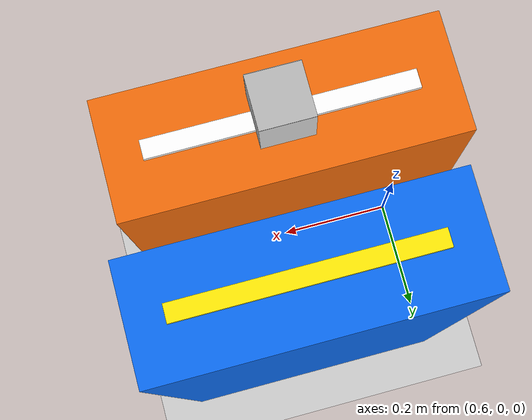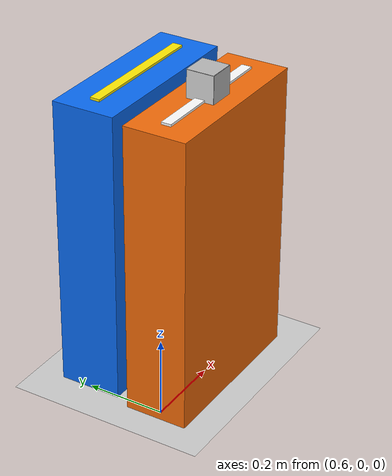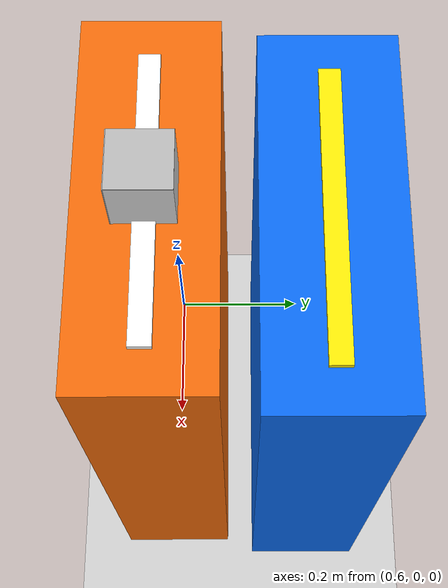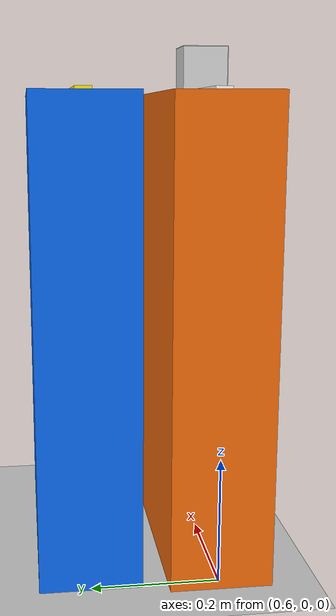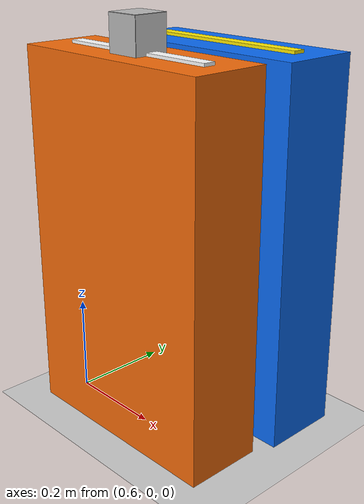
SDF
<?xml version="1.0"?>
<!-- 固定双工位抓放验证场景：禁止运行中移动动态样件或台面。 -->
<sdf version="1.6">
  <world name="grasp_place">
    <!-- 高对比度展示：避免 Gazebo Classic 默认光照令机器人和工位发灰。 -->
    <scene>
      <ambient>0.55 0.55 0.55 1</ambient>
      <background>0.08 0.11 0.16 1</background>
      <shadows>true</shadows>
    </scene>
    <light name="key_light" type="directional">
      <pose>0 0 8 0.35 -0.45 0</pose>
      <cast_shadows>true</cast_shadows>
      <diffuse>1 0.96 0.88 1</diffuse>
      <specular>0.25 0.25 0.25 1</specular>
      <attenuation><range>100</range><constant>0.9</constant><linear>0.01</linear><quadratic>0.001</quadratic></attenuation>
      <direction>-0.4 0.3 -1</direction>
    </light>
    <light name="fill_light" type="directional">
      <pose>0 -4 4 0 0 0</pose>
      <cast_shadows>false</cast_shadows>
      <diffuse>0.38 0.52 0.80 1</diffuse>
      <specular>0.05 0.05 0.05 1</specular>
      <direction>0 0.6 -1</direction>
    </light>
    <plugin name="gazebo_ros_state" filename="libgazebo_ros_state.so">
      <ros><namespace>/gazebo</namespace></ros>
      <update_rate>30.0</update_rate>
    </plugin>
    <model name="ground_plane">
      <static>true</static>
      <link name="link">
        <collision name="collision"><geometry><plane><normal>0 0 1</normal><size>20 20</size></plane></geometry></collision>
        <visual name="visual"><geometry><plane><normal>0 0 1</normal><size>20 20</size></plane></geometry></visual>
      </link>
    </model>
    <model name="station_a_table">
      <static>true</static><pose>0.80 0.00 0 0 0 0</pose>
      <link name="link">
        <!-- 两台中心仅相距 0.2m，缩小为独立台面，便于清晰区分 A/B。 -->
        <collision name="collision"><pose>0 0 0.375 0 0 0</pose><geometry><box><size>0.45 0.16 0.75</size></box></geometry></collision>
        <visual name="visual"><pose>0 0 0.375 0 0 0</pose><geometry><box><size>0.45 0.16 0.75</size></box></geometry><material><ambient>0.50 0.20 0.02 1</ambient><diffuse>0.95 0.42 0.04 1</diffuse><specular>0.20 0.12 0.02 1</specular></material></visual>
        <!-- A 台：白色顶面识别条。 -->
        <visual name="station_a_identifier"><pose>0 0 0.753 0 0 0</pose><geometry><box><size>0.35 0.025 0.006</size></box></geometry><material><ambient>1 1 1 1</ambient><diffuse>1 1 1 1</diffuse></material></visual>
      </link>
    </model>
    <!-- B 放置中心采用正式任务的局部放置坐标。 -->
    <model name="station_b_table">
      <static>true</static><pose>0.82 0.20 0 0 0 0</pose>
      <link name="link">
        <collision name="collision"><pose>0 0 0.375 0 0 0</pose><geometry><box><size>0.45 0.16 0.75</size></box></geometry></collision>
        <visual name="visual"><pose>0 0 0.375 0 0 0</pose><geometry><box><size>0.45 0.16 0.75</size></box></geometry><material><ambient>0.02 0.20 0.52 1</ambient><diffuse>0.04 0.42 0.95 1</diffuse><specular>0.04 0.12 0.24 1</specular></material></visual>
        <!-- B 台：黄色顶面识别条。 -->
        <visual name="station_b_identifier"><pose>0 0 0.753 0 0 0</pose><geometry><box><size>0.35 0.025 0.006</size></box></geometry><material><ambient>1 0.92 0.02 1</ambient><diffuse>1 0.92 0.02 1</diffuse></material></visual>
      </link>
    </model>
    <include>
      <uri>model://aruco_sample</uri><name>aruco_sample</name>
      <pose>0.80 0.00 0.785 0 0 0</pose>
    </include>
    <physics name="default_physics" type="ode">
      <max_step_size>0.001</max_step_size><real_time_factor>1.0</real_time_factor><real_time_update_rate>1000</real_time_update_rate>
    </physics>
  </world>
</sdf>

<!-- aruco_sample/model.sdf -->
<sdf version="1.6">
  <model name="aruco_sample">
    <link name="link">
      <inertial>
        <mass>0.05</mass>
        <inertia>
          <ixx>4.0e-5</ixx><ixy>0</ixy><ixz>0</ixz>
          <iyy>4.0e-5</iyy><iyz>0</iyz><izz>4.0e-5</izz>
        </inertia>
      </inertial>
      <collision name="collision">
        <geometry><box><size>0.07 0.07 0.07</size></box></geometry>
        <surface>
          <friction><ode><mu>1.0</mu><mu2>1.0</mu2></ode></friction>
          <contact>
            <ode>
              <kp>1e6</kp>
              <kd>1.0</kd>
              <min_depth>0.001</min_depth>
              <max_vel>0.01</max_vel>
            </ode>
          </contact>
        </surface>
      </collision>
      <visual name="body_visual">
        <geometry><box><size>0.07 0.07 0.07</size></box></geometry>
        <material>
          <ambient>0.85 0.85 0.85 1</ambient>
          <diffuse>0.85 0.85 0.85 1</diffuse>
        </material>
      </visual>
      <visual name="aruco_marker_front">
        <pose>0 -0.0355 0 0 0 0</pose>
        <geometry>
          <box><size>0.07 0.001 0.07</size></box>
        </geometry>
        <material>
          <script>
            <uri>model://aruco_sample/materials/scripts</uri>
            <uri>model://aruco_sample/materials/textures</uri>
            <name>ArucoSample/Marker</name>
          </script>
        </material>
      </visual>
      <visual name="aruco_marker_top">
        <pose>0 0 0.0355 0 0 0</pose>
        <geometry>
          <box><size>0.07 0.07 0.001</size></box>
        </geometry>
        <material>
          <script>
            <uri>model://aruco_sample/materials/scripts</uri>
            <uri>model://aruco_sample/materials/textures</uri>
            <name>ArucoSample/MarkerTop</name>
          </script>
        </material>
      </visual>
    </link>
  </model>
</sdf>
